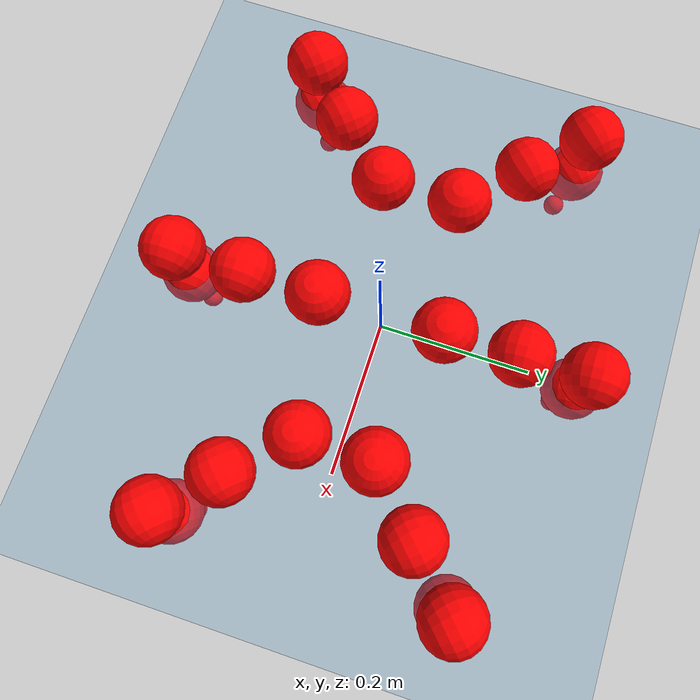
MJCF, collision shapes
<mujoco model="Golem">
  <compiler angle="radian" assetdir="assets" balanceinertia="true" inertiafromgeom="false"/>

  <option timestep="0.005" density="1.2" viscosity="2e-05"/>

  <size nkey="1"/>

  <visual>
    <quality shadowsize="8192"/>
    <map shadowclip="0.5"/>
  </visual>

  <default>
    <default class="/">
      <joint armature="0.01" damping="0.01" frictionloss="0.01"/>
      <geom contype="0" conaffinity="0" group="1" solref="-1000 -80"/>
      <site size="0.01 0.005 0.005" group="5"/>
      <general forcelimited="true" biastype="affine" gainprm="25" biasprm="0 -25 -0.5"/>
      <default class="visual">
        <geom type="mesh" group="2"/>
      </default>
      <default class="collision">
        <geom group="3"/>
      </default>
      <default class="foot">
        <geom size="0.01 0 0" condim="6" group="4" priority="1" solimp="0.015 1 0.01"/>
      </default>
      <default class="reward_collision_sphere">
        <geom group="5" rgba="1 0 0 1"/>
      </default>
    </default>
  </default>

  <asset>
    <texture type="skybox" colorspace="auto" name="//unnamed_texture_0" builtin="gradient" rgb1="0.95 0.95 0.95" rgb2="0.95 0.95 0.95" width="100" height="600"/>
    <texture type="2d" colorspace="auto" name="texplane" builtin="checker" rgb1="0.345 0.575 0.748" rgb2="0.345 0.575 0.748" markrgb="1 1 1" width="512" height="512"/>
    <material name="MatPlane" class="/" texture="texplane" texuniform="true" texrepeat="2 2" specular="0.9"/>
    <mesh name="body" class="/" file="body.stl" scale="0.001 0.001 0.001"/>
    <mesh name="coxa" class="/" file="coxa.stl" scale="0.001 0.001 0.001"/>
    <mesh name="femur" class="/" file="femur.stl" scale="0.001 0.001 0.001"/>
    <mesh name="tibia" class="/" file="tibia.stl" scale="0.001 0.001 0.001"/>
    <mesh name="tarsus" class="/" file="tarsus.stl" scale="0.001 0.001 0.001"/>
  </asset>

  <worldbody>
    <geom name="floor" class="/" size="100 100 0.125" type="plane" group="0" material="MatPlane"/>
    <light name="toplight_shadow" class="/" pos="0 0 5" dir="0.0990148 0.0990148 -0.990148" type="directional" ambient="0.04 0.04 0.04" diffuse="0.55 0.55 0.55" specular="0.12 0.12 0.12"/>
    <light name="toplight_fill" class="/" pos="0 0 5" dir="0.0990148 0.0990148 -0.990148" type="directional" castshadow="false" ambient="0.04 0.04 0.04" diffuse="0.3 0.3 0.3" specular="0.08 0.08 0.08"/>
    <body name="trunk" pos="-0.0010669 -0.000600294 -0.000751169" quat="1 -0.000154365 6.87212e-05 -0.00014476">
      <inertial pos="0.00141552 -0.000533428 -0.00476424" quat="0.999993 -0.00307534 0.000846249 0.00171568" mass="3.94985" diaginertia="0.0151058 0.00478082 0.0179929"/>
      <joint name="//unnamed_joint_0" type="free"/>
      <geom name="//unnamed_geom_1" class="/" pos="0 0 0.0717128" quat="1 0 0 0" type="mesh" rgba="0.9 0.9 0.9 1" mesh="body"/>
      <site name="imu" class="/" pos="0.151767 0.00525776 0.113367" size="0.0102337"/>
      <camera name="track" class="/" pos="0 -1.72957 0" quat="0.707107 0.707107 0 0" mode="trackcom"/>
      <camera name="ego_camera" class="/" pos="0.141024 0 0.112051" quat="-0.5 -0.5 0.5 0.5"/>
      <body name="coxa_RR" pos="-0.192371 -0.0740567 0.0711598" quat="0.382907 -0.000270632 -0.000175262 -0.923787">
        <inertial pos="0.00011574 -0.000363981 -0.000290215" quat="0.999999 0.000906065 -0.000906057 0.00047779" mass="0.211674" diaginertia="0.0146573 0.00480229 0.016852"/>
        <joint name="coxa_joint_RR" class="/" pos="0 0 0" axis="0.000407488 0.00192817 -0.999998" range="-3.1336 3.14958" armature="0.0104016" damping="0.00832523" frictionloss="0.0100512"/>
        <geom name="//unnamed_geom_2" class="/" type="mesh" rgba="0.2 0.2 0.2 1" mesh="coxa"/>
        <geom name="//unnamed_geom_3" class="reward_collision_sphere" size="0.0409346" pos="-0.0325439 0 0"/>
        <body name="femur_RR" pos="0.0660053 0.00321223 -0.00186843" quat="0.499682 -0.499934 0.500493 0.49989">
          <inertial pos="-0.00269136 -4.67666e-05 -0.00265567" quat="0.99991 0.00801316 -0.0106561 0.0012018" mass="0.208811" diaginertia="0.0146108 0.00468448 0.0171911"/>
          <joint name="femur_joint_RR" class="/" pos="0 0 0" axis="0.00018374 0.00264916 -0.999996" stiffness="0.00827107" range="-3.118 3.14012" armature="0.010026" damping="0.00104842" frictionloss="0.0103502"/>
          <geom name="//unnamed_geom_4" class="/" type="mesh" rgba="0.9 0.9 0.9 1" mesh="femur"/>
          <geom name="//unnamed_geom_5" class="reward_collision_sphere" size="0.0409346"/>
          <body name="tibia_RR" pos="0.00185629 -0.092812 -0.00199076" quat="0.000145878 1 0.00022932 -0.000137498">
            <inertial pos="-9.00545e-05 0.000580011 -0.00231796" quat="0.999996 0.000291909 0.00226899 0.00158423" mass="0.219775" diaginertia="0.0156676 0.00509245 0.018189"/>
            <joint name="tibia_joint_RR" class="/" pos="0 0 0" axis="-0.00977313 -0.0061746 0.999933" range="-3.15282 3.13505" armature="0.0103296" damping="0.0028631" frictionloss="0.0092998"/>
            <geom name="//unnamed_geom_6" class="/" type="mesh" rgba="0.2 0.2 0.2 1" mesh="tibia"/>
            <geom name="//unnamed_geom_7" class="reward_collision_sphere" size="0.0409346"/>
            <body name="tarsus_RR" pos="0.0944504 -0.000292732 -0.000673994" quat="1 -1.21858e-05 5.08351e-05 -1.17573e-05">
              <inertial pos="0.0669373 0.000649334 0.000259271" quat="0.499047 0.510853 0.492759 0.497161" mass="0.218577" diaginertia="0.0147605 0.00479915 0.017961"/>
              <joint name="tarsus_joint_RR" class="/" pos="0 0 0" axis="-0.000347144 0.00952221 0.999955" range="-3.14774 3.11905" armature="0.010549" damping="0.0426433" frictionloss="0.00968875"/>
              <geom name="//unnamed_geom_8" class="/" type="mesh" rgba="0.9 0.9 0.9 1" mesh="tarsus"/>
              <geom name="foot_1" class="foot" size="0.0100924" pos="0.121497 0 0" quat="0 -0.707107 0 0.707107"/>
              <geom name="//unnamed_geom_10" class="reward_collision_sphere" size="0.0409346"/>
              <geom name="//unnamed_geom_11" class="reward_collision_sphere" size="0.0153505" pos="0.116616 0 0"/>
              <site name="foot_1" class="foot" pos="0.121497 0 0" quat="0 -0.707107 0 0.707107" size="0.0102337"/>
            </body>
          </body>
        </body>
      </body>
      <body name="coxa_RM" pos="0.000746989 -0.112979 0.073562" quat="0.70716 -0.000367512 -0.00131353 -0.707052">
        <inertial pos="-0.00191596 8.38178e-05 -0.00239577" quat="0.999965 0.000427785 -0.00509941 0.00666242" mass="0.214997" diaginertia="0.0144389 0.00481933 0.0177251"/>
        <joint name="coxa_joint_RM" class="/" pos="0 0 0" axis="-0.000709885 -0.00386818 -0.999992" range="-3.12248 3.13816" armature="0.0100473" damping="0.00897035" frictionloss="0.0104607"/>
        <geom name="//unnamed_geom_12" class="/" type="mesh" rgba="0.2 0.2 0.2 1" mesh="coxa"/>
        <geom name="//unnamed_geom_13" class="reward_collision_sphere" size="0.0409346" pos="-0.0325439 0 0"/>
        <body name="femur_RM" pos="0.0655967 0.000542008 -0.00161399" quat="0.50056 -0.499925 0.499721 0.499793">
          <inertial pos="0.00260878 -0.000506507 0.000152561" quat="0.999911 0.00709672 0.000223043 0.0112693" mass="0.216659" diaginertia="0.014796 0.00470579 0.0177444"/>
          <joint name="femur_joint_RM" class="/" pos="0 0 0" axis="-0.0094764 -0.0034606 -0.999949" range="-3.13243 3.14452" armature="0.00982013" damping="0.00538888" frictionloss="0.010134"/>
          <geom name="//unnamed_geom_14" class="/" type="mesh" rgba="0.9 0.9 0.9 1" mesh="femur"/>
          <geom name="//unnamed_geom_15" class="reward_collision_sphere" size="0.0409346"/>
          <body name="tibia_RM" pos="0.000983581 -0.0935433 -3.2068e-05" quat="-6.39772e-05 1 -0.000197389 4.17667e-06">
            <inertial pos="-0.00257448 -0.000925398 -0.000632273" quat="0.999997 0.0021431 -0.000482364 0.00114642" mass="0.212875" diaginertia="0.0151833 0.00468319 0.0168543"/>
            <joint name="tibia_joint_RM" class="/" pos="0 0 0" axis="0.00119755 0.00287124 0.999995" range="-3.1288 3.15227" armature="0.0101573" damping="0.0119181" frictionloss="0.0106217"/>
            <geom name="//unnamed_geom_16" class="/" type="mesh" rgba="0.2 0.2 0.2 1" mesh="tibia"/>
            <geom name="//unnamed_geom_17" class="reward_collision_sphere" size="0.0409346"/>
            <body name="tarsus_RM" pos="0.0963349 -0.000596312 -0.000390059" quat="1 3.28267e-05 -0.000301814 1.10477e-05">
              <inertial pos="0.0659136 0.000657402 -0.000230848" quat="0.498156 0.503588 0.500261 0.497974" mass="0.212529" diaginertia="0.0143917 0.00479639 0.0178125"/>
              <joint name="tarsus_joint_RM" class="/" pos="0 0 0" axis="-0.00366636 0.00867732 0.999956" range="-3.12949 3.13538" armature="0.0101258" damping="0.00503676" frictionloss="0.0104801"/>
              <geom name="//unnamed_geom_18" class="/" type="mesh" rgba="0.9 0.9 0.9 1" mesh="tarsus"/>
              <geom name="foot_2" class="foot" size="0.00935845" pos="0.121497 0 0" quat="0 -0.707107 0 0.707107"/>
              <geom name="//unnamed_geom_20" class="reward_collision_sphere" size="0.0409346"/>
              <geom name="//unnamed_geom_21" class="reward_collision_sphere" size="0.0153505" pos="0.116616 0 0"/>
              <site name="foot_2" class="foot" pos="0.121497 0 0" quat="0 -0.707107 0 0.707107" size="0.0102337"/>
            </body>
          </body>
        </body>
      </body>
      <body name="coxa_RF" pos="0.192843 -0.0696918 0.0696684" quat="0.92391 0.000242912 -5.13048e-05 -0.38261">
        <inertial pos="-0.00258988 -0.000947045 0.000728395" quat="0.999939 -0.00744669 0.00648984 -0.00486451" mass="0.219381" diaginertia="0.0150237 0.00464066 0.0174998"/>
        <joint name="coxa_joint_RF" class="/" pos="0 0 0" axis="0.00207643 0.00113855 -0.999997" range="-3.12928 3.13546" armature="0.0110208" damping="0.0110666" frictionloss="0.010727"/>
        <geom name="//unnamed_geom_22" class="/" type="mesh" rgba="0.2 0.2 0.2 1" mesh="coxa"/>
        <geom name="//unnamed_geom_23" class="reward_collision_sphere" size="0.0409346" pos="-0.0325439 0 0"/>
        <body name="femur_RF" pos="0.0650181 -0.00109398 0.00124026" quat="0.500284 -0.49967 0.499653 0.500393">
          <inertial pos="0.000365057 0.00254122 0.000326755" quat="0.999998 -0.000125341 0.00195834 0.000405612" mass="0.211023" diaginertia="0.0151964 0.0047037 0.0176463"/>
          <joint name="femur_joint_RF" class="/" pos="0 0 0" axis="0.00492134 0.000957726 -0.999987" range="-3.1522 3.11421" armature="0.0101861" damping="0.00519212" frictionloss="0.0107726"/>
          <geom name="//unnamed_geom_24" class="/" type="mesh" rgba="0.9 0.9 0.9 1" mesh="femur"/>
          <geom name="//unnamed_geom_25" class="reward_collision_sphere" size="0.0409346"/>
          <body name="tibia_RF" pos="0.00139102 -0.0913327 0.00138849" quat="-0.000232899 1 0.00020739 0.00010175">
            <inertial pos="-0.00204019 -0.00177749 0.00236937" quat="0.999997 0.000203021 0.000813912 0.00213089" mass="0.21872" diaginertia="0.0151062 0.00487072 0.0177234"/>
            <joint name="tibia_joint_RF" class="/" pos="0 0 0" axis="-0.0033309 0.00225037 0.999992" range="-3.12852 3.10486" armature="0.010316" damping="0.00324588" frictionloss="0.01052"/>
            <geom name="//unnamed_geom_26" class="/" type="mesh" rgba="0.2 0.2 0.2 1" mesh="tibia"/>
            <geom name="//unnamed_geom_27" class="reward_collision_sphere" size="0.0409346"/>
            <body name="tarsus_RF" pos="0.0965939 0.00232571 -0.00192236" quat="1 0.000161504 -0.000507681 0.000395047">
              <inertial pos="0.0645794 0.000259366 -0.000800469" quat="0.496376 0.501084 0.499587 0.502931" mass="0.211973" diaginertia="0.014948 0.00499791 0.0172093"/>
              <joint name="tarsus_joint_RF" class="/" pos="0 0 0" axis="0.00185917 -0.0059559 0.999981" range="-3.14375 3.14057" armature="0.011215" damping="0.00284839" frictionloss="0.0115985"/>
              <geom name="//unnamed_geom_28" class="/" type="mesh" rgba="0.9 0.9 0.9 1" mesh="tarsus"/>
              <geom name="foot_3" class="foot" size="0.0112206" pos="0.121497 0 0" quat="0 -0.707107 0 0.707107"/>
              <geom name="//unnamed_geom_30" class="reward_collision_sphere" size="0.0409346"/>
              <geom name="//unnamed_geom_31" class="reward_collision_sphere" size="0.0153505" pos="0.116616 0 0"/>
              <site name="foot_3" class="foot" pos="0.121497 0 0" quat="0 -0.707107 0 0.707107" size="0.0102337"/>
            </body>
          </body>
        </body>
      </body>
      <body name="coxa_LR" pos="-0.193043 0.0735846 0.0712029" quat="0.382523 -0.000151935 0.00109565 0.923945">
        <inertial pos="0.000546829 -0.00131767 -0.00227856" quat="0.999958 0.00464486 -0.00776395 0.00152454" mass="0.201947" diaginertia="0.0145098 0.00466861 0.0169126"/>
        <joint name="coxa_joint_LR" class="/" pos="0 0 0" axis="-0.00174197 0.00121921 -0.999998" range="-3.11804 3.19254" armature="0.0111437" damping="0.0138308" frictionloss="0.0088627"/>
        <geom name="//unnamed_geom_32" class="/" type="mesh" rgba="0.2 0.2 0.2 1" mesh="coxa"/>
        <geom name="//unnamed_geom_33" class="reward_collision_sphere" size="0.0409346" pos="-0.0325439 0 0"/>
        <body name="femur_LR" pos="0.0663439 -0.000762171 -0.00179846" quat="0.50001 -0.499978 0.499987 0.500026">
          <inertial pos="-0.000831076 -0.000566427 -0.000581731" quat="0.999997 8.44538e-05 0.00196375 -0.00108497" mass="0.213353" diaginertia="0.0150641 0.00497605 0.0176706"/>
          <joint name="femur_joint_LR" class="/" pos="0 0 0" axis="-0.0051749 -0.00136684 0.999986" range="-3.12781 3.10287" armature="0.0108155" damping="0.00672588" frictionloss="0.0107696"/>
          <geom name="//unnamed_geom_34" class="/" type="mesh" rgba="0.9 0.9 0.9 1" mesh="femur"/>
          <geom name="//unnamed_geom_35" class="reward_collision_sphere" size="0.0409346"/>
          <body name="tibia_LR" pos="-0.00174311 -0.0954724 -0.000734238" quat="0.000413971 1 0.000239607 0.000827942">
            <inertial pos="0.000893039 0.00277386 -1.93496e-05" quat="0.999952 0.0012417 -0.00877193 0.00426474" mass="0.20894" diaginertia="0.0154317 0.0049317 0.0169715"/>
            <joint name="tibia_joint_LR" class="/" pos="0 0 0" axis="-0.000465257 -0.00556176 -0.999984" range="-3.1346 3.14208" armature="0.00971853" damping="0.00373232" frictionloss="0.0104413"/>
            <geom name="//unnamed_geom_36" class="/" type="mesh" rgba="0.2 0.2 0.2 1" mesh="tibia"/>
            <geom name="//unnamed_geom_37" class="reward_collision_sphere" size="0.0409346"/>
            <body name="tarsus_LR" pos="0.0979526 0.00219489 0.00025299" quat="1 2.51055e-05 -0.000170746 0.000150539">
              <inertial pos="0.0658638 -0.000424358 0.000976403" quat="0.498932 0.500407 0.50016 0.500499" mass="0.207101" diaginertia="0.0146044 0.00465965 0.0170692"/>
              <joint name="tarsus_joint_LR" class="/" pos="0 0 0" axis="-0.000845824 -0.00226615 -0.999997" range="-3.12702 3.15657" armature="0.00872923" damping="0.0287056" frictionloss="0.010695"/>
              <geom name="//unnamed_geom_38" class="/" type="mesh" rgba="0.9 0.9 0.9 1" mesh="tarsus"/>
              <geom name="foot_4" class="foot" size="0.00987525" pos="0.121497 0 0" quat="0.707107 0 -0.707107 0"/>
              <geom name="//unnamed_geom_40" class="reward_collision_sphere" size="0.0409346"/>
              <geom name="//unnamed_geom_41" class="reward_collision_sphere" size="0.0153505" pos="0.116616 0 0"/>
              <site name="foot_4" class="foot" pos="0.121497 0 0" quat="0.707107 0 -0.707107 0" size="0.0102337"/>
            </body>
          </body>
        </body>
      </body>
      <body name="coxa_LM" pos="-0.00182354 0.113824 0.0724515" quat="0.706497 0.000400103 -0.000692173 0.707716">
        <inertial pos="0.00257417 -0.00246889 0.000310515" quat="0.999943 -0.00123762 0.00983099 -0.00405266" mass="0.216746" diaginertia="0.0146758 0.00482477 0.0176549"/>
        <joint name="coxa_joint_LM" class="/" pos="0 0 0" axis="7.77926e-05 -7.36548e-05 -1" stiffness="0.000158517" range="-3.13968 3.13301" armature="0.0114876" damping="0" frictionloss="0.0097233"/>
        <geom name="//unnamed_geom_42" class="/" type="mesh" rgba="0.2 0.2 0.2 1" mesh="coxa"/>
        <geom name="//unnamed_geom_43" class="reward_collision_sphere" size="0.0409346" pos="-0.0325439 0 0"/>
        <body name="femur_LM" pos="0.063609 0.00074284 -0.00102501" quat="0.500574 -0.49989 0.4999 0.499635">
          <inertial pos="-0.00212962 -7.33955e-05 -0.00249601" quat="0.999996 -0.00166246 0.000231165 0.00236547" mass="0.224749" diaginertia="0.0154632 0.00491868 0.0179616"/>
          <joint name="femur_joint_LM" class="/" pos="0 0 0" axis="0.00180025 -0.00503692 0.999986" range="-3.12179 3.11807" armature="0.0108071" damping="0.00397798" frictionloss="0.01015"/>
          <geom name="//unnamed_geom_44" class="/" type="mesh" rgba="0.9 0.9 0.9 1" mesh="femur"/>
          <geom name="//unnamed_geom_45" class="reward_collision_sphere" size="0.0409346"/>
          <body name="tibia_LM" pos="0.00122491 -0.0895838 0.00136079" quat="-0.000160977 1 -8.4779e-06 -0.000264974">
            <inertial pos="0.0027101 0.000329701 0.0025929" quat="0.999999 0.00136894 -0.000470808 -6.33568e-05" mass="0.212376" diaginertia="0.0149708 0.00465624 0.0178883"/>
            <joint name="tibia_joint_LM" class="/" pos="0 0 0" axis="0.000289659 -0.000757676 -1" range="-3.16165 3.13269" armature="0.0108598" damping="0" frictionloss="0.0093197"/>
            <geom name="//unnamed_geom_46" class="/" type="mesh" rgba="0.2 0.2 0.2 1" mesh="tibia"/>
            <geom name="//unnamed_geom_47" class="reward_collision_sphere" size="0.0409346"/>
            <body name="tarsus_LM" pos="0.0962426 -0.0021029 0.00143598" quat="1 -0.00054259 0.000163946 2.58504e-06">
              <inertial pos="0.0646167 4.02794e-05 0.000843978" quat="0.500461 0.4997 0.499778 0.500061" mass="0.221591" diaginertia="0.015018 0.00516015 0.0183768"/>
              <joint name="tarsus_joint_LM" class="/" pos="0 0 0" axis="-0.00608072 -0.00611211 -0.999963" stiffness="0.00646622" range="-3.19054 3.13456" armature="0.0103731" damping="0.00677846" frictionloss="0.0102728"/>
              <geom name="//unnamed_geom_48" class="/" type="mesh" rgba="0.9 0.9 0.9 1" mesh="tarsus"/>
              <geom name="foot_5" class="foot" size="0.0102409" pos="0.121497 0 0" quat="0.707107 0 -0.707107 0"/>
              <geom name="//unnamed_geom_50" class="reward_collision_sphere" size="0.0409346"/>
              <geom name="//unnamed_geom_51" class="reward_collision_sphere" size="0.0153505" pos="0.116616 0 0"/>
              <site name="foot_5" class="foot" pos="0.121497 0 0" quat="0.707107 0 -0.707107 0" size="0.0102337"/>
            </body>
          </body>
        </body>
      </body>
      <body name="coxa_LF" pos="0.194568 0.0729041 0.0725913" quat="0.923667 -0.0010413 -0.000632018 0.383195">
        <inertial pos="0.00038465 0.00279489 -0.000153347" quat="0.999996 -0.00201574 -0.00152838 -0.00110773" mass="0.216052" diaginertia="0.0153771 0.00511362 0.0182326"/>
        <joint name="coxa_joint_LF" class="/" pos="0 0 0" axis="-0.00880016 -0.00309332 -0.999956" range="-3.13953 3.14503" armature="0.0115221" damping="0.00041733" frictionloss="0.00969429"/>
        <geom name="//unnamed_geom_52" class="/" type="mesh" rgba="0.2 0.2 0.2 1" mesh="coxa"/>
        <geom name="//unnamed_geom_53" class="reward_collision_sphere" size="0.0409346" pos="-0.0325439 0 0"/>
        <body name="femur_LF" pos="0.065738 -0.00209158 -0.0031101" quat="0.499728 -0.49928 0.50069 0.500301">
          <inertial pos="0.00127685 0.000901473 0.00268104" quat="0.999929 0.00749245 0.00584927 -0.00724986" mass="0.214886" diaginertia="0.0148739 0.00500089 0.0176017"/>
          <joint name="femur_joint_LF" class="/" pos="0 0 0" axis="0.00757292 -0.0010946 0.999971" range="-3.1374 3.0859" armature="0.0102047" damping="0" frictionloss="0.00970537"/>
          <geom name="//unnamed_geom_54" class="/" type="mesh" rgba="0.9 0.9 0.9 1" mesh="femur"/>
          <geom name="//unnamed_geom_55" class="reward_collision_sphere" size="0.0409346"/>
          <body name="tibia_LF" pos="-0.000659221 -0.0945773 -7.18869e-05" quat="0.000455982 0.999999 -0.00101346 -0.000334163">
            <inertial pos="-0.00111752 -0.00254832 -8.02614e-05" quat="0.999997 0.00204885 -0.000365447 -0.00129892" mass="0.212962" diaginertia="0.0149359 0.00483097 0.0178504"/>
            <joint name="tibia_joint_LF" class="/" pos="0 0 0" axis="0.00370617 -0.012166 -0.999919" stiffness="0.000974706" range="-3.18417 3.14845" armature="0.0107974" damping="0.00396197" frictionloss="0.0115392"/>
            <geom name="//unnamed_geom_56" class="/" type="mesh" rgba="0.2 0.2 0.2 1" mesh="tibia"/>
            <geom name="//unnamed_geom_57" class="reward_collision_sphere" size="0.0409346"/>
            <body name="tarsus_LF" pos="0.095778 0.00150717 -0.000597593" quat="0.999999 -0.000935309 -0.000532424 -0.000730133">
              <inertial pos="0.065716 0.000313931 -0.000426981" quat="0.500487 0.500901 0.499448 0.499162" mass="0.214481" diaginertia="0.0145332 0.00471734 0.0171455"/>
              <joint name="tarsus_joint_LF" class="/" pos="0 0 0" axis="0.0129619 -0.00812192 -0.999883" stiffness="0.0276744" range="-3.15602 3.09456" armature="0.00974364" damping="0.0302178" frictionloss="0.0102656"/>
              <geom name="//unnamed_geom_58" class="/" type="mesh" rgba="0.9 0.9 0.9 1" mesh="tarsus"/>
              <geom name="foot_6" class="foot" size="0.00931204" pos="0.121497 0 0" quat="0.707107 0 -0.707107 0"/>
              <geom name="//unnamed_geom_60" class="reward_collision_sphere" size="0.0409346"/>
              <geom name="//unnamed_geom_61" class="reward_collision_sphere" size="0.0153505" pos="0.116616 0 0"/>
              <site name="foot_6" class="foot" pos="0.121497 0 0" quat="0.707107 0 -0.707107 0" size="0.0102337"/>
            </body>
          </body>
        </body>
      </body>
    </body>
  </worldbody>

  <contact>
    <pair class="/" geom1="floor" geom2="foot_1" name="//unnamed_contact_0"/>
    <pair class="/" geom1="floor" geom2="foot_2" name="//unnamed_contact_1"/>
    <pair class="/" geom1="floor" geom2="foot_3" name="//unnamed_contact_2"/>
    <pair class="/" geom1="floor" geom2="foot_4" name="//unnamed_contact_3"/>
    <pair class="/" geom1="floor" geom2="foot_5" name="//unnamed_contact_4"/>
    <pair class="/" geom1="floor" geom2="foot_6" name="//unnamed_contact_5"/>
  </contact>

  <actuator>
    <general name="coxa_joint_RR" class="/" joint="coxa_joint_RR" forcerange="-6.7317 6.7317" gainprm="24.5108" biasprm="0 -24.5108 -0.517712"/>
    <general name="femur_joint_RR" class="/" joint="femur_joint_RR" forcerange="-7.41796 7.41796" gainprm="24.5108" biasprm="0 -24.5108 -0.517712"/>
    <general name="tibia_joint_RR" class="/" joint="tibia_joint_RR" forcerange="-6.72323 6.72323" gainprm="24.5108" biasprm="0 -24.5108 -0.517712"/>
    <general name="tarsus_joint_RR" class="/" joint="tarsus_joint_RR" forcerange="-7.56601 7.56601" gainprm="24.5108" biasprm="0 -24.5108 -0.517712"/>
    <general name="coxa_joint_RM" class="/" joint="coxa_joint_RM" forcerange="-7.4839 7.4839" gainprm="24.5108" biasprm="0 -24.5108 -0.517712"/>
    <general name="femur_joint_RM" class="/" joint="femur_joint_RM" forcerange="-7.4521 7.4521" gainprm="24.5108" biasprm="0 -24.5108 -0.517712"/>
    <general name="tibia_joint_RM" class="/" joint="tibia_joint_RM" forcerange="-6.77357 6.77357" gainprm="24.5108" biasprm="0 -24.5108 -0.517712"/>
    <general name="tarsus_joint_RM" class="/" joint="tarsus_joint_RM" forcerange="-8.22135 8.22135" gainprm="24.5108" biasprm="0 -24.5108 -0.517712"/>
    <general name="coxa_joint_RF" class="/" joint="coxa_joint_RF" forcerange="-7.20887 7.20887" gainprm="24.5108" biasprm="0 -24.5108 -0.517712"/>
    <general name="femur_joint_RF" class="/" joint="femur_joint_RF" forcerange="-7.35523 7.35523" gainprm="24.5108" biasprm="0 -24.5108 -0.517712"/>
    <general name="tibia_joint_RF" class="/" joint="tibia_joint_RF" forcerange="-8.20509 8.20509" gainprm="24.5108" biasprm="0 -24.5108 -0.517712"/>
    <general name="tarsus_joint_RF" class="/" joint="tarsus_joint_RF" forcerange="-7.37948 7.37948" gainprm="24.5108" biasprm="0 -24.5108 -0.517712"/>
    <general name="coxa_joint_LR" class="/" joint="coxa_joint_LR" forcerange="-7.45488 7.45488" gainprm="24.5108" biasprm="0 -24.5108 -0.517712"/>
    <general name="femur_joint_LR" class="/" joint="femur_joint_LR" forcerange="-6.87998 6.87998" gainprm="24.5108" biasprm="0 -24.5108 -0.517712"/>
    <general name="tibia_joint_LR" class="/" joint="tibia_joint_LR" forcerange="-7.57852 7.57852" gainprm="24.5108" biasprm="0 -24.5108 -0.517712"/>
    <general name="tarsus_joint_LR" class="/" joint="tarsus_joint_LR" forcerange="-7.13919 7.13919" gainprm="24.5108" biasprm="0 -24.5108 -0.517712"/>
    <general name="coxa_joint_LM" class="/" joint="coxa_joint_LM" forcerange="-7.57681 7.57681" gainprm="24.5108" biasprm="0 -24.5108 -0.517712"/>
    <general name="femur_joint_LM" class="/" joint="femur_joint_LM" forcerange="-7.77016 7.77016" gainprm="24.5108" biasprm="0 -24.5108 -0.517712"/>
    <general name="tibia_joint_LM" class="/" joint="tibia_joint_LM" forcerange="-7.02393 7.02393" gainprm="24.5108" biasprm="0 -24.5108 -0.517712"/>
    <general name="tarsus_joint_LM" class="/" joint="tarsus_joint_LM" forcerange="-7.72529 7.72529" gainprm="24.5108" biasprm="0 -24.5108 -0.517712"/>
    <general name="coxa_joint_LF" class="/" joint="coxa_joint_LF" forcerange="-7.70334 7.70334" gainprm="24.5108" biasprm="0 -24.5108 -0.517712"/>
    <general name="femur_joint_LF" class="/" joint="femur_joint_LF" forcerange="-7.17474 7.17474" gainprm="24.5108" biasprm="0 -24.5108 -0.517712"/>
    <general name="tibia_joint_LF" class="/" joint="tibia_joint_LF" forcerange="-7.82033 7.82033" gainprm="24.5108" biasprm="0 -24.5108 -0.517712"/>
    <general name="tarsus_joint_LF" class="/" joint="tarsus_joint_LF" forcerange="-7.60108 7.60108" gainprm="24.5108" biasprm="0 -24.5108 -0.517712"/>
  </actuator>

  <sensor>
    <gyro site="imu" name="imu_angular_velocity"/>
    <velocimeter site="imu" name="imu_linear_velocity"/>
    <framelinvel objtype="site" objname="foot_1" name="foot_1_global_linear_velocity"/>
    <framelinvel objtype="site" objname="foot_2" name="foot_2_global_linear_velocity"/>
    <framelinvel objtype="site" objname="foot_3" name="foot_3_global_linear_velocity"/>
    <framelinvel objtype="site" objname="foot_4" name="foot_4_global_linear_velocity"/>
    <framelinvel objtype="site" objname="foot_5" name="foot_5_global_linear_velocity"/>
    <framelinvel objtype="site" objname="foot_6" name="foot_6_global_linear_velocity"/>
  </sensor>

  <keyframe>
    <key name="home" qpos="0 0 0.1457 1 0 0 0 0 0 0 0 0 0 0 0 0 0 0 0 0 0 0 0 0 0 0 0 0 0 0 0"/>
  </keyframe>
</mujoco>
